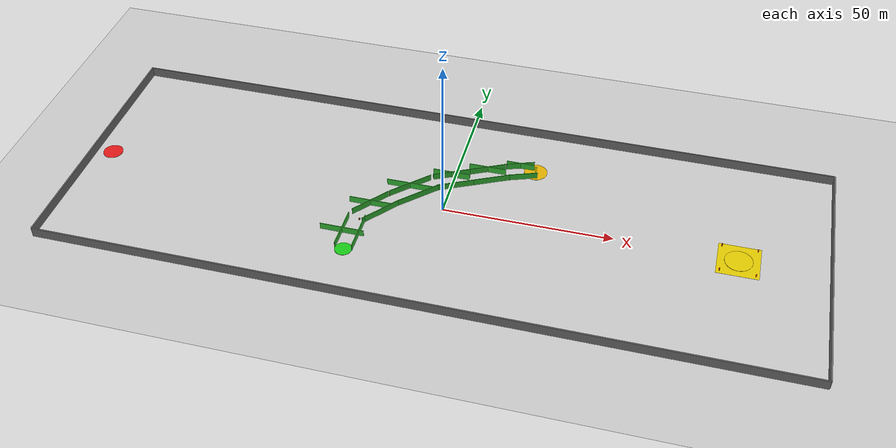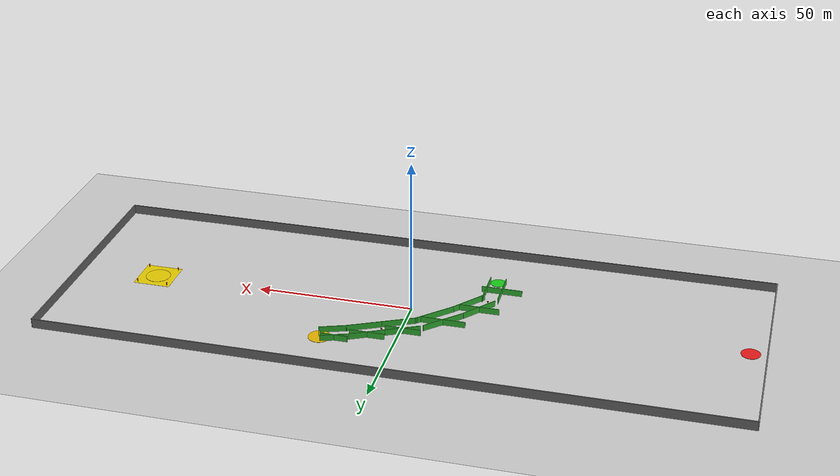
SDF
<sdf version="1.6">
 <world name="navitas_arena">
  <physics type="ode">
   <max_step_size>0.001</max_step_size>
   <real_time_factor>1</real_time_factor>
   <real_time_update_rate>1000</real_time_update_rate>
   <gravity>0 0 -9.8</gravity>
  </physics>
  <scene><ambient>0.4 0.4 0.4 1</ambient><background>0.7 0.7 0.7 1</background><shadows>true</shadows></scene>
  <light name="sun" type="directional">
   <pose>0 0 100 0 -0 0</pose>
   <diffuse>0.8 0.8 0.8 1</diffuse>
   <specular>0.1 0.1 0.1 1</specular>
   <attenuation>
    <range>1000</range>
    <constant>0.9</constant>
    <linear>0.01</linear>
    <quadratic>0.001</quadratic>
   </attenuation>
   <direction>-0.5 0.1 -0.9</direction>
  </light>
  <model name="ground_plane">
   <static>true</static>
   <link name="link">
    <collision name="collision">
     <geometry><plane><normal>0 0 1</normal><size>300 300</size></plane></geometry>
     <surface><friction><ode><mu>0.8</mu><mu2>0.8</mu2></ode></friction></surface>
    </collision>
    <visual name="visual">
     <cast_shadows>false</cast_shadows>
     <geometry><plane><normal>0 0 1</normal><size>300 300</size></plane></geometry>
     <material>
      <script><uri>file://media/materials/scripts/gazebo.material</uri><name>Gazebo/Grey</name></script>
     </material>
    </visual>
   </link>
  </model>
  <model name="boundary_N">
   <static>true</static>
   <pose>0 40.0 1.5 0 0 0</pose>
   <link name="link">
    <collision name="col"><geometry><box><size>220.0 0.4 3.0</size></box></geometry></collision>
    <visual name="vis">
     <geometry><box><size>220.0 0.4 3.0</size></box></geometry>
     <material><ambient>0.4 0.4 0.4 1</ambient><diffuse>0.4 0.4 0.4 1</diffuse></material>
    </visual>
   </link>
  </model>
  <model name="boundary_S">
   <static>true</static>
   <pose>0 -40.0 1.5 0 0 0</pose>
   <link name="link">
    <collision name="col"><geometry><box><size>220.0 0.4 3.0</size></box></geometry></collision>
    <visual name="vis">
     <geometry><box><size>220.0 0.4 3.0</size></box></geometry>
     <material><ambient>0.4 0.4 0.4 1</ambient><diffuse>0.4 0.4 0.4 1</diffuse></material>
    </visual>
   </link>
  </model>
  <model name="boundary_W">
   <static>true</static>
   <pose>-110.0 0 1.5 0 0 0</pose>
   <link name="link">
    <collision name="col"><geometry><box><size>0.4 80.0 3.0</size></box></geometry></collision>
    <visual name="vis">
     <geometry><box><size>0.4 80.0 3.0</size></box></geometry>
     <material><ambient>0.4 0.4 0.4 1</ambient><diffuse>0.4 0.4 0.4 1</diffuse></material>
    </visual>
   </link>
  </model>
  <model name="boundary_E">
   <static>true</static>
   <pose>110.0 0 1.5 0 0 0</pose>
   <link name="link">
    <collision name="col"><geometry><box><size>0.4 80.0 3.0</size></box></geometry></collision>
    <visual name="vis">
     <geometry><box><size>0.4 80.0 3.0</size></box></geometry>
     <material><ambient>0.4 0.4 0.4 1</ambient><diffuse>0.4 0.4 0.4 1</diffuse></material>
    </visual>
   </link>
  </model>
  <model name="iha_fb_marker">
   <static>true</static>
   <pose>-105.0 0.0 0.05 0 0 0</pose>
   <link name="link">
    <collision name="col">
     <geometry><cylinder><radius>3.0</radius><length>0.1</length></cylinder></geometry>
    </collision>
    <visual name="vis">
     <geometry><cylinder><radius>3.0</radius><length>0.1</length></cylinder></geometry>
     <material><ambient>0.9 0.1 0.1 1</ambient><diffuse>0.9 0.1 0.1 1</diffuse></material>
    </visual>
   </link>
  </model>
  <model name="iha_ib_marker">
   <static>true</static>
   <pose>85.0 0.0 0.05 0 0 0</pose>
   <link name="link">
    <collision name="col">
     <geometry><cylinder><radius>4.0</radius><length>0.1</length></cylinder></geometry>
    </collision>
    <visual name="vis">
     <geometry><cylinder><radius>4.0</radius><length>0.1</length></cylinder></geometry>
     <material><ambient>0.9 0.8 0.0 1</ambient><diffuse>0.9 0.8 0.0 1</diffuse></material>
    </visual>
   </link>
  </model>
  <model name="ika_kb_marker">
   <static>true</static>
   <pose>-23.0 -23.0 0.05 0 0 0</pose>
   <link name="link">
    <collision name="col">
     <geometry><cylinder><radius>2.5</radius><length>0.1</length></cylinder></geometry>
    </collision>
    <visual name="vis">
     <geometry><cylinder><radius>2.5</radius><length>0.1</length></cylinder></geometry>
     <material><ambient>0.1 0.8 0.1 1</ambient><diffuse>0.1 0.8 0.1 1</diffuse></material>
    </visual>
   </link>
  </model>
  <model name="hb_marker">
   <static>true</static>
   <pose>23.0 23.0 0.05 0 0 0</pose>
   <link name="link">
    <collision name="col">
     <geometry><cylinder><radius>3.5</radius><length>0.1</length></cylinder></geometry>
    </collision>
    <visual name="vis">
     <geometry><cylinder><radius>3.5</radius><length>0.1</length></cylinder></geometry>
     <material><ambient>0.9 0.7 0.0 1</ambient><diffuse>0.9 0.7 0.0 1</diffuse></material>
    </visual>
   </link>
  </model>
  <model name="hb_sign">
   <static>true</static>
   <pose>23.0 23.0 1.2 0 0 0</pose>
   <link name="link">
    <collision name="col"><geometry><box><size>0.5 0.05 2.0</size></box></geometry></collision>
    <visual name="vis">
     <geometry><box><size>0.5 0.05 2.0</size></box></geometry>
     <material><ambient>0.9 0.9 0.0 1</ambient><diffuse>0.9 0.9 0.0 1</diffuse></material>
    </visual>
   </link>
  </model>
  <model name="landing_ground">
   <static>true</static>
   <pose>85.0 0.0 0.01 0 0 0</pose>
   <link name="link">
    <collision name="col"><geometry><box><size>12.0 12.0 0.02</size></box></geometry></collision>
    <visual name="vis">
     <geometry><box><size>12.0 12.0 0.02</size></box></geometry>
     <material><ambient>0.9 0.8 0.0 1</ambient><diffuse>0.9 0.8 0.0 1</diffuse></material>
    </visual>
   </link>
  </model>
  <model name="landing_cone_0">
   <static>true</static>
   <pose>80.0 -5.0 0.5 0 0 0</pose>
   <link name="link">
    <collision name="col">
     <geometry><cylinder><radius>0.15</radius><length>1.0</length></cylinder></geometry>
    </collision>
    <visual name="vis">
     <geometry><cylinder><radius>0.15</radius><length>1.0</length></cylinder></geometry>
     <material><ambient>1.0 0.2 0.0 1</ambient><diffuse>1.0 0.2 0.0 1</diffuse></material>
    </visual>
   </link>
  </model>
  <model name="landing_cone_1">
   <static>true</static>
   <pose>80.0 5.0 0.5 0 0 0</pose>
   <link name="link">
    <collision name="col">
     <geometry><cylinder><radius>0.15</radius><length>1.0</length></cylinder></geometry>
    </collision>
    <visual name="vis">
     <geometry><cylinder><radius>0.15</radius><length>1.0</length></cylinder></geometry>
     <material><ambient>1.0 0.2 0.0 1</ambient><diffuse>1.0 0.2 0.0 1</diffuse></material>
    </visual>
   </link>
  </model>
  <model name="landing_cone_2">
   <static>true</static>
   <pose>90.0 -5.0 0.5 0 0 0</pose>
   <link name="link">
    <collision name="col">
     <geometry><cylinder><radius>0.15</radius><length>1.0</length></cylinder></geometry>
    </collision>
    <visual name="vis">
     <geometry><cylinder><radius>0.15</radius><length>1.0</length></cylinder></geometry>
     <material><ambient>1.0 0.2 0.0 1</ambient><diffuse>1.0 0.2 0.0 1</diffuse></material>
    </visual>
   </link>
  </model>
  <model name="landing_cone_3">
   <static>true</static>
   <pose>90.0 5.0 0.5 0 0 0</pose>
   <link name="link">
    <collision name="col">
     <geometry><cylinder><radius>0.15</radius><length>1.0</length></cylinder></geometry>
    </collision>
    <visual name="vis">
     <geometry><cylinder><radius>0.15</radius><length>1.0</length></cylinder></geometry>
     <material><ambient>1.0 0.2 0.0 1</ambient><diffuse>1.0 0.2 0.0 1</diffuse></material>
    </visual>
   </link>
  </model>
  <model name="ika_wall_L_0">
   <static>true</static>
   <pose>-25.5 -16.5 1.0 0 0 0</pose>
   <link name="link">
    <collision name="col"><geometry><box><size>13.0 0.2 2.0</size></box></geometry></collision>
    <visual name="vis">
     <geometry><box><size>13.0 0.2 2.0</size></box></geometry>
     <material><ambient>0.2 0.7 0.2 1</ambient><diffuse>0.2 0.7 0.2 1</diffuse></material>
    </visual>
   </link>
  </model>
  <model name="ika_wall_R_0">
   <static>true</static>
   <pose>-20.5 -16.5 1.0 0 0 1.5707963267948966</pose>
   <link name="link">
    <collision name="col"><geometry><box><size>13.0 0.2 2.0</size></box></geometry></collision>
    <visual name="vis">
     <geometry><box><size>13.0 0.2 2.0</size></box></geometry>
     <material><ambient>0.2 0.7 0.2 1</ambient><diffuse>0.2 0.7 0.2 1</diffuse></material>
    </visual>
   </link>
  </model>
  <model name="ika_wall_L2_0">
   <static>true</static>
   <pose>-25.5 -16.5 1.0 0 0 1.5707963267948966</pose>
   <link name="link">
    <collision name="col"><geometry><box><size>13.0 0.2 2.0</size></box></geometry></collision>
    <visual name="vis">
     <geometry><box><size>13.0 0.2 2.0</size></box></geometry>
     <material><ambient>0.2 0.7 0.2 1</ambient><diffuse>0.2 0.7 0.2 1</diffuse></material>
    </visual>
   </link>
  </model>
  <model name="ika_wall_L_1">
   <static>true</static>
   <pose>-20.952172023607577 -3.4382623811139394 1.0 0 0 0</pose>
   <link name="link">
    <collision name="col"><geometry><box><size>12.806248474865697 0.2 2.0</size></box></geometry></collision>
    <visual name="vis">
     <geometry><box><size>12.806248474865697 0.2 2.0</size></box></geometry>
     <material><ambient>0.2 0.7 0.2 1</ambient><diffuse>0.2 0.7 0.2 1</diffuse></material>
    </visual>
   </link>
  </model>
  <model name="ika_wall_R_1">
   <static>true</static>
   <pose>-17.047827976392423 -6.5617376188860606 1.0 0 0 0.8960553845713439</pose>
   <link name="link">
    <collision name="col"><geometry><box><size>12.806248474865697 0.2 2.0</size></box></geometry></collision>
    <visual name="vis">
     <geometry><box><size>12.806248474865697 0.2 2.0</size></box></geometry>
     <material><ambient>0.2 0.7 0.2 1</ambient><diffuse>0.2 0.7 0.2 1</diffuse></material>
    </visual>
   </link>
  </model>
  <model name="ika_wall_L2_1">
   <static>true</static>
   <pose>-20.952172023607577 -3.4382623811139394 1.0 0 0 0.8960553845713439</pose>
   <link name="link">
    <collision name="col"><geometry><box><size>12.806248474865697 0.2 2.0</size></box></geometry></collision>
    <visual name="vis">
     <geometry><box><size>12.806248474865697 0.2 2.0</size></box></geometry>
     <material><ambient>0.2 0.7 0.2 1</ambient><diffuse>0.2 0.7 0.2 1</diffuse></material>
    </visual>
   </link>
  </model>
  <model name="ika_wall_L_2">
   <static>true</static>
   <pose>-11.767766952966369 6.767766952966369 1.0 0 0 0</pose>
   <link name="link">
    <collision name="col"><geometry><box><size>14.142135623730951 0.2 2.0</size></box></geometry></collision>
    <visual name="vis">
     <geometry><box><size>14.142135623730951 0.2 2.0</size></box></geometry>
     <material><ambient>0.2 0.7 0.2 1</ambient><diffuse>0.2 0.7 0.2 1</diffuse></material>
    </visual>
   </link>
  </model>
  <model name="ika_wall_R_2">
   <static>true</static>
   <pose>-8.232233047033631 3.232233047033631 1.0 0 0 0.7853981633974483</pose>
   <link name="link">
    <collision name="col"><geometry><box><size>14.142135623730951 0.2 2.0</size></box></geometry></collision>
    <visual name="vis">
     <geometry><box><size>14.142135623730951 0.2 2.0</size></box></geometry>
     <material><ambient>0.2 0.7 0.2 1</ambient><diffuse>0.2 0.7 0.2 1</diffuse></material>
    </visual>
   </link>
  </model>
  <model name="ika_wall_L2_2">
   <static>true</static>
   <pose>-11.767766952966369 6.767766952966369 1.0 0 0 0.7853981633974483</pose>
   <link name="link">
    <collision name="col"><geometry><box><size>14.142135623730951 0.2 2.0</size></box></geometry></collision>
    <visual name="vis">
     <geometry><box><size>14.142135623730951 0.2 2.0</size></box></geometry>
     <material><ambient>0.2 0.7 0.2 1</ambient><diffuse>0.2 0.7 0.2 1</diffuse></material>
    </visual>
   </link>
  </model>
  <model name="ika_wall_L_3">
   <static>true</static>
   <pose>-1.118033988749895 14.73606797749979 1.0 0 0 0</pose>
   <link name="link">
    <collision name="col"><geometry><box><size>11.180339887498949 0.2 2.0</size></box></geometry></collision>
    <visual name="vis">
     <geometry><box><size>11.180339887498949 0.2 2.0</size></box></geometry>
     <material><ambient>0.2 0.7 0.2 1</ambient><diffuse>0.2 0.7 0.2 1</diffuse></material>
    </visual>
   </link>
  </model>
  <model name="ika_wall_R_3">
   <static>true</static>
   <pose>1.118033988749895 10.26393202250021 1.0 0 0 0.4636476090008061</pose>
   <link name="link">
    <collision name="col"><geometry><box><size>11.180339887498949 0.2 2.0</size></box></geometry></collision>
    <visual name="vis">
     <geometry><box><size>11.180339887498949 0.2 2.0</size></box></geometry>
     <material><ambient>0.2 0.7 0.2 1</ambient><diffuse>0.2 0.7 0.2 1</diffuse></material>
    </visual>
   </link>
  </model>
  <model name="ika_wall_L2_3">
   <static>true</static>
   <pose>-1.118033988749895 14.73606797749979 1.0 0 0 0.4636476090008061</pose>
   <link name="link">
    <collision name="col"><geometry><box><size>11.180339887498949 0.2 2.0</size></box></geometry></collision>
    <visual name="vis">
     <geometry><box><size>11.180339887498949 0.2 2.0</size></box></geometry>
     <material><ambient>0.2 0.7 0.2 1</ambient><diffuse>0.2 0.7 0.2 1</diffuse></material>
    </visual>
   </link>
  </model>
  <model name="ika_wall_L_4">
   <static>true</static>
   <pose>8.881966011250105 19.73606797749979 1.0 0 0 0</pose>
   <link name="link">
    <collision name="col"><geometry><box><size>11.180339887498949 0.2 2.0</size></box></geometry></collision>
    <visual name="vis">
     <geometry><box><size>11.180339887498949 0.2 2.0</size></box></geometry>
     <material><ambient>0.2 0.7 0.2 1</ambient><diffuse>0.2 0.7 0.2 1</diffuse></material>
    </visual>
   </link>
  </model>
  <model name="ika_wall_R_4">
   <static>true</static>
   <pose>11.118033988749895 15.26393202250021 1.0 0 0 0.4636476090008061</pose>
   <link name="link">
    <collision name="col"><geometry><box><size>11.180339887498949 0.2 2.0</size></box></geometry></collision>
    <visual name="vis">
     <geometry><box><size>11.180339887498949 0.2 2.0</size></box></geometry>
     <material><ambient>0.2 0.7 0.2 1</ambient><diffuse>0.2 0.7 0.2 1</diffuse></material>
    </visual>
   </link>
  </model>
  <model name="ika_wall_L2_4">
   <static>true</static>
   <pose>8.881966011250105 19.73606797749979 1.0 0 0 0.4636476090008061</pose>
   <link name="link">
    <collision name="col"><geometry><box><size>11.180339887498949 0.2 2.0</size></box></geometry></collision>
    <visual name="vis">
     <geometry><box><size>11.180339887498949 0.2 2.0</size></box></geometry>
     <material><ambient>0.2 0.7 0.2 1</ambient><diffuse>0.2 0.7 0.2 1</diffuse></material>
    </visual>
   </link>
  </model>
  <model name="ika_wall_L_5">
   <static>true</static>
   <pose>18.12219139602902 23.84082294392261 1.0 0 0 0</pose>
   <link name="link">
    <collision name="col"><geometry><box><size>8.54400374531753 0.2 2.0</size></box></geometry></collision>
    <visual name="vis">
     <geometry><box><size>8.54400374531753 0.2 2.0</size></box></geometry>
     <material><ambient>0.2 0.7 0.2 1</ambient><diffuse>0.2 0.7 0.2 1</diffuse></material>
    </visual>
   </link>
  </model>
  <model name="ika_wall_R_5">
   <static>true</static>
   <pose>19.87780860397098 19.15917705607739 1.0 0 0 0.35877067027057225</pose>
   <link name="link">
    <collision name="col"><geometry><box><size>8.54400374531753 0.2 2.0</size></box></geometry></collision>
    <visual name="vis">
     <geometry><box><size>8.54400374531753 0.2 2.0</size></box></geometry>
     <material><ambient>0.2 0.7 0.2 1</ambient><diffuse>0.2 0.7 0.2 1</diffuse></material>
    </visual>
   </link>
  </model>
  <model name="ika_wall_L2_5">
   <static>true</static>
   <pose>18.12219139602902 23.84082294392261 1.0 0 0 0.35877067027057225</pose>
   <link name="link">
    <collision name="col"><geometry><box><size>8.54400374531753 0.2 2.0</size></box></geometry></collision>
    <visual name="vis">
     <geometry><box><size>8.54400374531753 0.2 2.0</size></box></geometry>
     <material><ambient>0.2 0.7 0.2 1</ambient><diffuse>0.2 0.7 0.2 1</diffuse></material>
    </visual>
   </link>
  </model>
  <model name="debris_0">
   <static>true</static>
   <pose>-22.272896193244584 -10.171506659752593 0.19464214762976453 0 0 0</pose>
   <link name="link">
    <collision name="col">
     <geometry><box><size>0.38928429525952907 0.38928429525952907 0.38928429525952907</size></box></geometry>
    </collision>
    <visual name="vis">
     <geometry><box><size>0.38928429525952907 0.38928429525952907 0.38928429525952907</size></box></geometry>
     <material><ambient>0.55 0.27 0.07 1</ambient><diffuse>0.55 0.27 0.07 1</diffuse></material>
    </visual>
   </link>
  </model>
  <model name="debris_1">
   <static>true</static>
   <pose>-18.505126476981406 -2.4980272246791317 0.16738776652588322 0 0 0</pose>
   <link name="link">
    <collision name="col">
     <geometry><box><size>0.33477553305176644 0.33477553305176644 0.33477553305176644</size></box></geometry>
    </collision>
    <visual name="vis">
     <geometry><box><size>0.33477553305176644 0.33477553305176644 0.33477553305176644</size></box></geometry>
     <material><ambient>0.55 0.27 0.07 1</ambient><diffuse>0.55 0.27 0.07 1</diffuse></material>
    </visual>
   </link>
  </model>
  <model name="debris_2">
   <static>true</static>
   <pose>5.862941832768572 14.068683321507446 0.1965321786781479 0 0 0</pose>
   <link name="link">
    <collision name="col">
     <geometry><box><size>0.3930643573562958 0.3930643573562958 0.3930643573562958</size></box></geometry>
    </collision>
    <visual name="vis">
     <geometry><box><size>0.3930643573562958 0.3930643573562958 0.3930643573562958</size></box></geometry>
     <material><ambient>0.55 0.27 0.07 1</ambient><diffuse>0.55 0.27 0.07 1</diffuse></material>
    </visual>
   </link>
  </model>
 </world>
</sdf>
